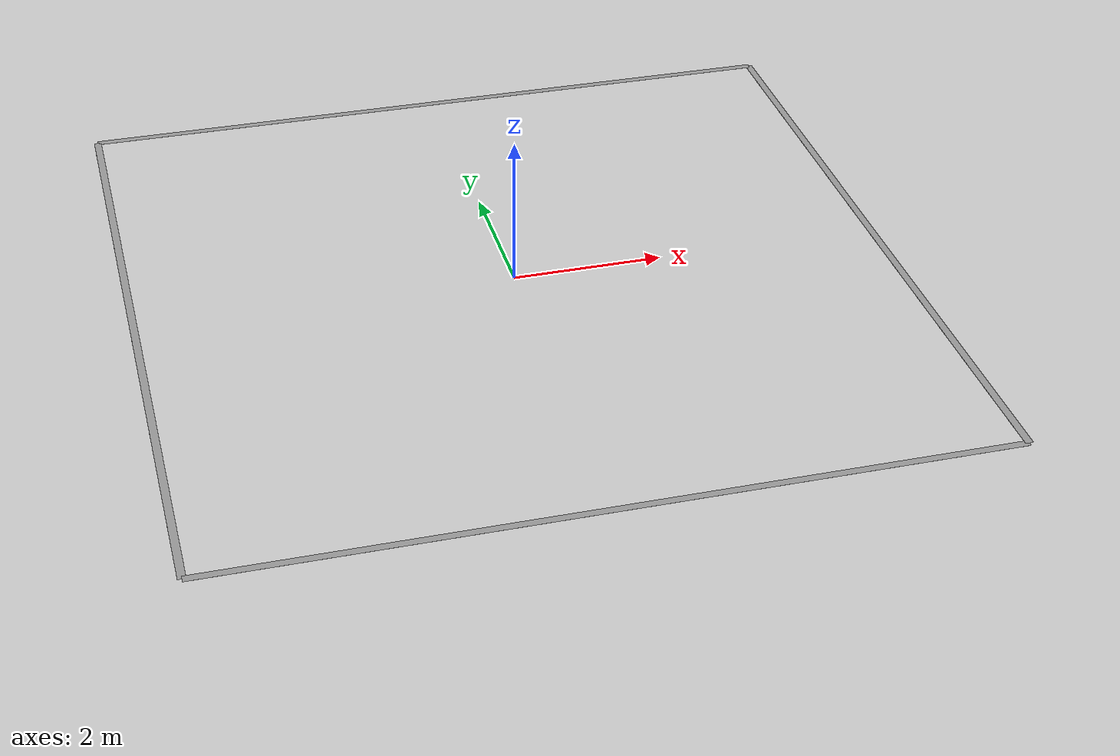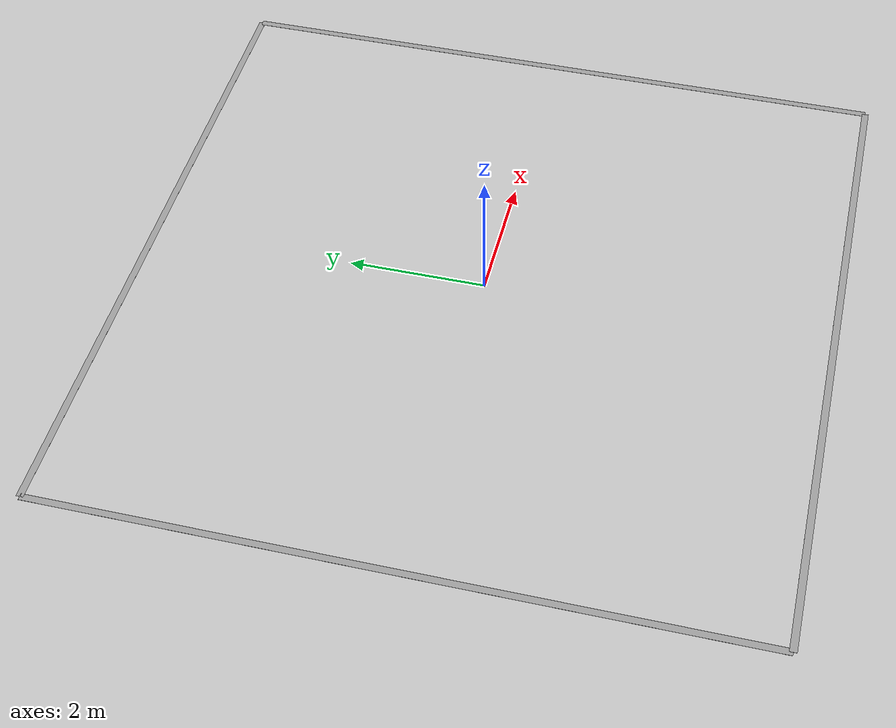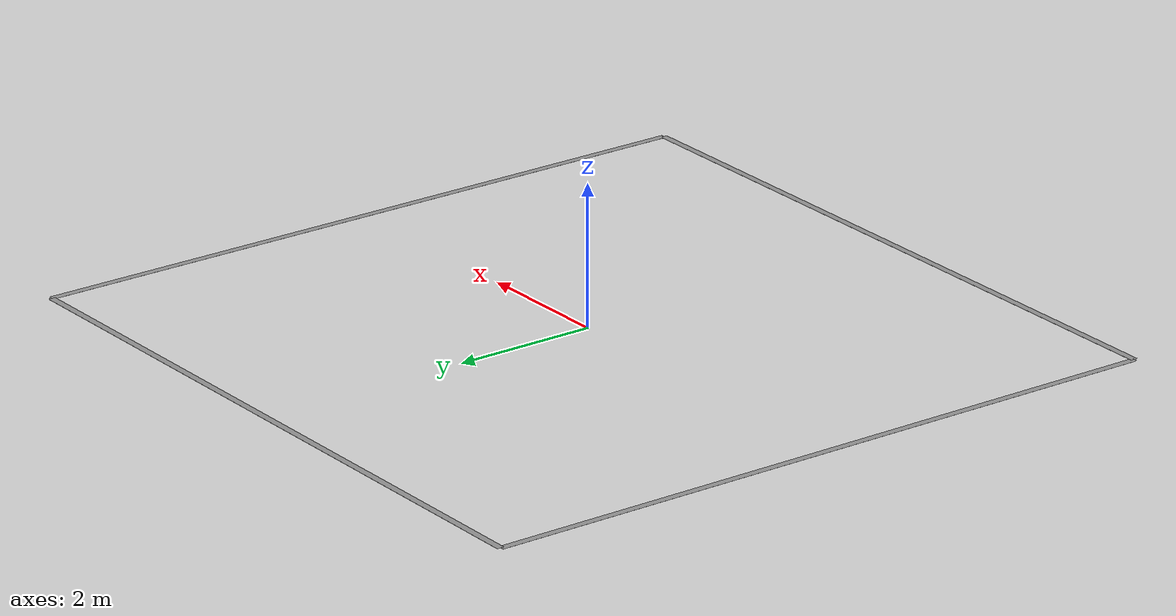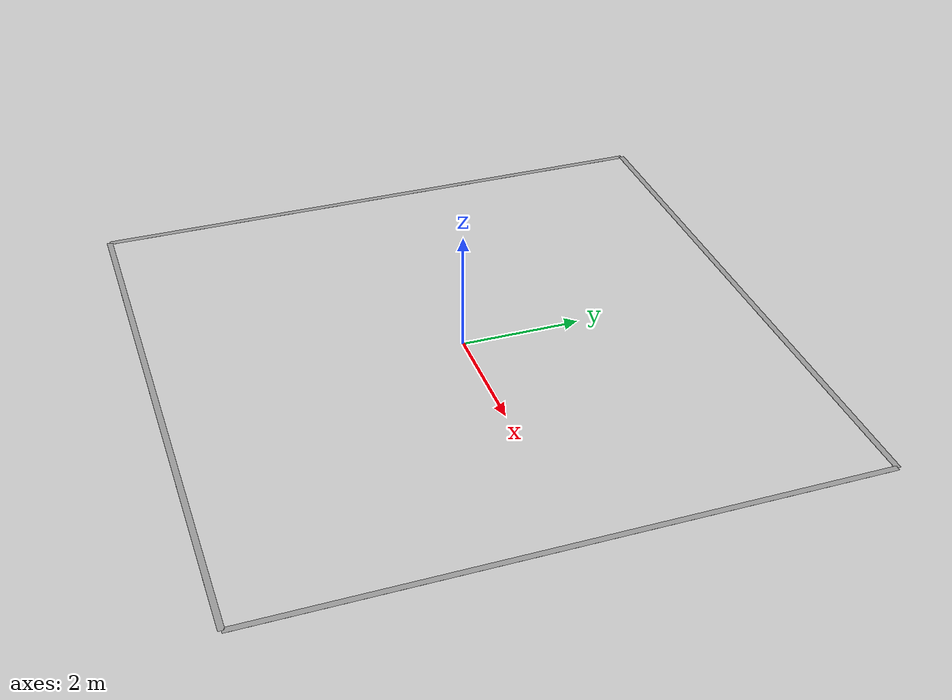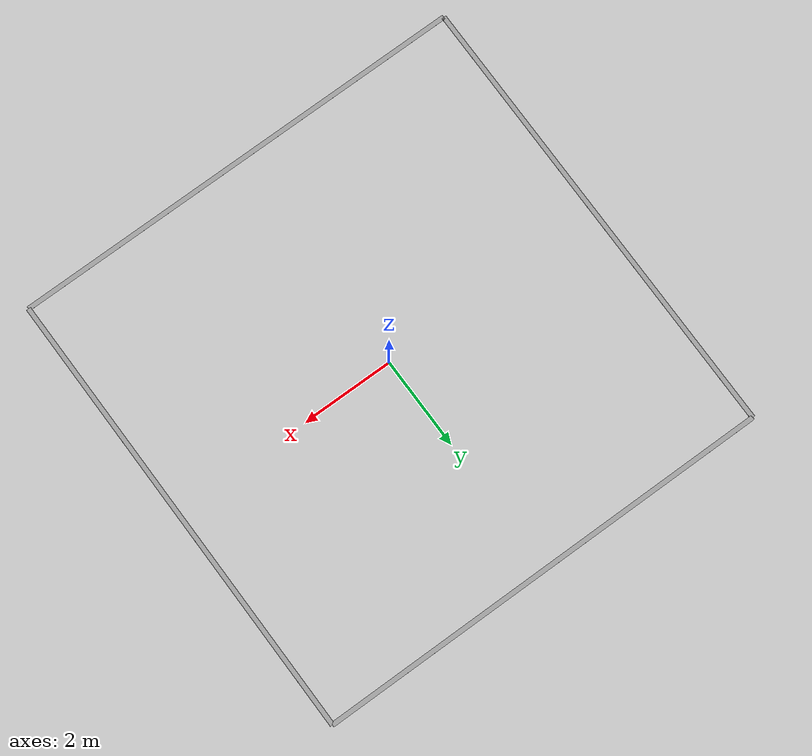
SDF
<?xml version='1.0'?>
<sdf version='1.6'>
  <model name='designation_area'>
    <link name='link_0'>
      <pose frame=''>0 -5 0 0 0 0</pose>
      <inertial>
        <mass>1</mass>
        <inertia>
          <ixx>0.166667</ixx>
          <ixy>0</ixy>
          <ixz>0</ixz>
          <iyy>0.166667</iyy>
          <iyz>0</iyz>
          <izz>0.166667</izz>
        </inertia>
        <pose frame=''>0 0 0 0 0 0</pose>
      </inertial>
      <gravity>1</gravity>
      <self_collide>0</self_collide>
      <kinematic>0</kinematic>
      <visual name='ModelPreview_0::link_0::visual_1'>
        <pose frame=''>0 0 0 0 0 0</pose>
        <geometry>
          <box>
            <size>10 0.1 0.001</size>
          </box>
        </geometry>
        <material>
          <lighting>1</lighting>
          <script>
            <uri>file://media/materials/scripts/gazebo.material</uri>
            <name>Gazebo/Grey</name>
          </script>
          <ambient>1 1 1 1</ambient>
          <diffuse>1 1 1 1</diffuse>
          <specular>0.01 0.01 0.01 1</specular>
          <emissive>0 0 0 1</emissive>
          <shader type='vertex'>
            <normal_map>__default__</normal_map>
          </shader>
        </material>
        <cast_shadows>1</cast_shadows>
        <transparency>0</transparency>
      </visual>
      <visual name='visual'>
        <pose frame=''>0 0 0 0 0 0</pose>
        <geometry>
          <box>
            <size>10 0.1 0.001</size>
          </box>
        </geometry>
        <material>
          <lighting>1</lighting>
          <script>
            <uri>file://media/materials/scripts/gazebo.material</uri>
            <name>Gazebo/Grey</name>
          </script>
          <ambient>1 1 1 1</ambient>
          <diffuse>1 1 1 1</diffuse>
          <specular>0.01 0.01 0.01 1</specular>
          <emissive>0 0 0 1</emissive>
          <shader type='vertex'>
            <normal_map>__default__</normal_map>
          </shader>
        </material>
        <cast_shadows>1</cast_shadows>
        <transparency>0</transparency>
      </visual>
      <collision name='collision'>
        <laser_retro>0</laser_retro>
        <max_contacts>10</max_contacts>
        <pose frame=''>0 0 0 0 0 0</pose>
        <geometry>
          <box>
            <size>10 0.1 0.001</size>
          </box>
        </geometry>
        <surface>
          <friction>
            <ode>
              <mu>1</mu>
              <mu2>1</mu2>
              <fdir1>0 0 0</fdir1>
              <slip1>0</slip1>
              <slip2>0</slip2>
            </ode>
            <torsional>
              <coefficient>1</coefficient>
              <patch_radius>0</patch_radius>
              <surface_radius>0</surface_radius>
              <use_patch_radius>1</use_patch_radius>
              <ode>
                <slip>0</slip>
              </ode>
            </torsional>
          </friction>
          <bounce>
            <restitution_coefficient>0</restitution_coefficient>
            <threshold>1e+06</threshold>
          </bounce>
          <contact>
            <collide_without_contact>0</collide_without_contact>
            <collide_without_contact_bitmask>1</collide_without_contact_bitmask>
            <collide_bitmask>1</collide_bitmask>
            <ode>
              <soft_cfm>0</soft_cfm>
              <soft_erp>0.2</soft_erp>
              <kp>1e+13</kp>
              <kd>1</kd>
              <max_vel>0.01</max_vel>
              <min_depth>0</min_depth>
            </ode>
            <bullet>
              <split_impulse>1</split_impulse>
              <split_impulse_penetration_threshold>-0.01</split_impulse_penetration_threshold>
              <soft_cfm>0</soft_cfm>
              <soft_erp>0.2</soft_erp>
              <kp>1e+13</kp>
              <kd>1</kd>
            </bullet>
          </contact>
        </surface>
      </collision>
    </link>
    <link name='link_0_clone'>
      <pose frame=''>0 5 0 0 0 0</pose>
      <inertial>
        <mass>1</mass>
        <inertia>
          <ixx>0.166667</ixx>
          <ixy>0</ixy>
          <ixz>0</ixz>
          <iyy>0.166667</iyy>
          <iyz>0</iyz>
          <izz>0.166667</izz>
        </inertia>
        <pose frame=''>0 0 0 0 0 0</pose>
      </inertial>
      <self_collide>0</self_collide>
      <kinematic>0</kinematic>
      <gravity>1</gravity>
      <visual name='visual_1'>
        <pose frame=''>0 0 0 0 0 0</pose>
        <geometry>
          <box>
            <size>10 0.1 0.001</size>
          </box>
        </geometry>
        <material>
          <lighting>1</lighting>
          <script>
            <uri>file://media/materials/scripts/gazebo.material</uri>
            <name>Gazebo/Grey</name>
          </script>
          <ambient>1 1 1 1</ambient>
          <diffuse>1 1 1 1</diffuse>
          <specular>0.01 0.01 0.01 1</specular>
          <emissive>0 0 0 1</emissive>
          <shader type='vertex'>
            <normal_map>__default__</normal_map>
          </shader>
        </material>
        <cast_shadows>1</cast_shadows>
        <transparency>0</transparency>
      </visual>
      <visual name='visual'>
        <pose frame=''>0 0 0 0 0 0</pose>
        <geometry>
          <box>
            <size>10 0.1 0.001</size>
          </box>
        </geometry>
        <material>
          <lighting>1</lighting>
          <script>
            <uri>file://media/materials/scripts/gazebo.material</uri>
            <name>Gazebo/Grey</name>
          </script>
          <ambient>1 1 1 1</ambient>
          <diffuse>1 1 1 1</diffuse>
          <specular>0.01 0.01 0.01 1</specular>
          <emissive>0 0 0 1</emissive>
          <shader type='vertex'>
            <normal_map>__default__</normal_map>
          </shader>
        </material>
        <cast_shadows>1</cast_shadows>
        <transparency>0</transparency>
      </visual>
      <collision name='collision'>
        <laser_retro>0</laser_retro>
        <max_contacts>10</max_contacts>
        <pose frame=''>0 0 0 0 0 0</pose>
        <geometry>
          <box>
            <size>10 0.1 0.001</size>
          </box>
        </geometry>
        <surface>
          <friction>
            <ode>
              <mu>1</mu>
              <mu2>1</mu2>
              <fdir1>0 0 0</fdir1>
              <slip1>0</slip1>
              <slip2>0</slip2>
            </ode>
            <torsional>
              <coefficient>1</coefficient>
              <patch_radius>0</patch_radius>
              <surface_radius>0</surface_radius>
              <use_patch_radius>1</use_patch_radius>
              <ode>
                <slip>0</slip>
              </ode>
            </torsional>
          </friction>
          <bounce>
            <restitution_coefficient>0</restitution_coefficient>
            <threshold>1e+06</threshold>
          </bounce>
          <contact>
            <collide_without_contact>0</collide_without_contact>
            <collide_without_contact_bitmask>1</collide_without_contact_bitmask>
            <collide_bitmask>1</collide_bitmask>
            <ode>
              <soft_cfm>0</soft_cfm>
              <soft_erp>0.2</soft_erp>
              <kp>1e+13</kp>
              <kd>1</kd>
              <max_vel>0.01</max_vel>
              <min_depth>0</min_depth>
            </ode>
            <bullet>
              <split_impulse>1</split_impulse>
              <split_impulse_penetration_threshold>-0.01</split_impulse_penetration_threshold>
              <soft_cfm>0</soft_cfm>
              <soft_erp>0.2</soft_erp>
              <kp>1e+13</kp>
              <kd>1</kd>
            </bullet>
          </contact>
        </surface>
      </collision>
    </link>
    <link name='link_0_clone_0'>
      <pose frame=''>5 0 0 0 0 1.5708</pose>
      <inertial>
        <mass>1</mass>
        <inertia>
          <ixx>0.166667</ixx>
          <ixy>0</ixy>
          <ixz>0</ixz>
          <iyy>0.166667</iyy>
          <iyz>0</iyz>
          <izz>0.166667</izz>
        </inertia>
        <pose frame=''>0 0 0 0 0 0</pose>
      </inertial>
      <self_collide>0</self_collide>
      <kinematic>0</kinematic>
      <gravity>1</gravity>
      <visual name='visual_1'>
        <pose frame=''>0 0 0 0 0 0</pose>
        <geometry>
          <box>
            <size>10 0.1 0.001</size>
          </box>
        </geometry>
        <material>
          <lighting>1</lighting>
          <script>
            <uri>file://media/materials/scripts/gazebo.material</uri>
            <name>Gazebo/Grey</name>
          </script>
          <ambient>1 1 1 1</ambient>
          <diffuse>1 1 1 1</diffuse>
          <specular>0.01 0.01 0.01 1</specular>
          <emissive>0 0 0 1</emissive>
          <shader type='vertex'>
            <normal_map>__default__</normal_map>
          </shader>
        </material>
        <cast_shadows>1</cast_shadows>
        <transparency>0</transparency>
      </visual>
      <visual name='visual'>
        <pose frame=''>0 0 0 0 0 0</pose>
        <geometry>
          <box>
            <size>10 0.1 0.001</size>
          </box>
        </geometry>
        <material>
          <lighting>1</lighting>
          <script>
            <uri>file://media/materials/scripts/gazebo.material</uri>
            <name>Gazebo/Grey</name>
          </script>
          <ambient>1 1 1 1</ambient>
          <diffuse>1 1 1 1</diffuse>
          <specular>0.01 0.01 0.01 1</specular>
          <emissive>0 0 0 1</emissive>
          <shader type='vertex'>
            <normal_map>__default__</normal_map>
          </shader>
        </material>
        <cast_shadows>1</cast_shadows>
        <transparency>0</transparency>
      </visual>
      <collision name='collision'>
        <laser_retro>0</laser_retro>
        <max_contacts>10</max_contacts>
        <pose frame=''>0 0 0 0 0 0</pose>
        <geometry>
          <box>
            <size>10 0.1 0.001</size>
          </box>
        </geometry>
        <surface>
          <friction>
            <ode>
              <mu>1</mu>
              <mu2>1</mu2>
              <fdir1>0 0 0</fdir1>
              <slip1>0</slip1>
              <slip2>0</slip2>
            </ode>
            <torsional>
              <coefficient>1</coefficient>
              <patch_radius>0</patch_radius>
              <surface_radius>0</surface_radius>
              <use_patch_radius>1</use_patch_radius>
              <ode>
                <slip>0</slip>
              </ode>
            </torsional>
          </friction>
          <bounce>
            <restitution_coefficient>0</restitution_coefficient>
            <threshold>1e+06</threshold>
          </bounce>
          <contact>
            <collide_without_contact>0</collide_without_contact>
            <collide_without_contact_bitmask>1</collide_without_contact_bitmask>
            <collide_bitmask>1</collide_bitmask>
            <ode>
              <soft_cfm>0</soft_cfm>
              <soft_erp>0.2</soft_erp>
              <kp>1e+13</kp>
              <kd>1</kd>
              <max_vel>0.01</max_vel>
              <min_depth>0</min_depth>
            </ode>
            <bullet>
              <split_impulse>1</split_impulse>
              <split_impulse_penetration_threshold>-0.01</split_impulse_penetration_threshold>
              <soft_cfm>0</soft_cfm>
              <soft_erp>0.2</soft_erp>
              <kp>1e+13</kp>
              <kd>1</kd>
            </bullet>
          </contact>
        </surface>
      </collision>
    </link>
    <link name='link_0_clone_0_clone'>
      <pose frame=''>-5 0 0 0 0 1.5708</pose>
      <inertial>
        <mass>1</mass>
        <inertia>
          <ixx>0.166667</ixx>
          <ixy>0</ixy>
          <ixz>0</ixz>
          <iyy>0.166667</iyy>
          <iyz>0</iyz>
          <izz>0.166667</izz>
        </inertia>
        <pose frame=''>0 0 0 0 0 0</pose>
      </inertial>
      <self_collide>0</self_collide>
      <kinematic>0</kinematic>
      <gravity>1</gravity>
      <visual name='visual_1'>
        <pose frame=''>0 0 0 0 0 0</pose>
        <geometry>
          <box>
            <size>10 0.1 0.001</size>
          </box>
        </geometry>
        <material>
          <lighting>1</lighting>
          <script>
            <uri>file://media/materials/scripts/gazebo.material</uri>
            <name>Gazebo/Grey</name>
          </script>
          <ambient>1 1 1 1</ambient>
          <diffuse>1 1 1 1</diffuse>
          <specular>0.01 0.01 0.01 1</specular>
          <emissive>0 0 0 1</emissive>
          <shader type='vertex'>
            <normal_map>__default__</normal_map>
          </shader>
        </material>
        <cast_shadows>1</cast_shadows>
        <transparency>0</transparency>
      </visual>
      <visual name='visual'>
        <pose frame=''>0 0 0 0 0 0</pose>
        <geometry>
          <box>
            <size>10 0.1 0.001</size>
          </box>
        </geometry>
        <material>
          <lighting>1</lighting>
          <script>
            <uri>file://media/materials/scripts/gazebo.material</uri>
            <name>Gazebo/Grey</name>
          </script>
          <ambient>1 1 1 1</ambient>
          <diffuse>1 1 1 1</diffuse>
          <specular>0.01 0.01 0.01 1</specular>
          <emissive>0 0 0 1</emissive>
          <shader type='vertex'>
            <normal_map>__default__</normal_map>
          </shader>
        </material>
        <cast_shadows>1</cast_shadows>
        <transparency>0</transparency>
      </visual>
      <collision name='collision'>
        <laser_retro>0</laser_retro>
        <max_contacts>10</max_contacts>
        <pose frame=''>0 0 0 0 0 0</pose>
        <geometry>
          <box>
            <size>10 0.1 0.001</size>
          </box>
        </geometry>
        <surface>
          <friction>
            <ode>
              <mu>1</mu>
              <mu2>1</mu2>
              <fdir1>0 0 0</fdir1>
              <slip1>0</slip1>
              <slip2>0</slip2>
            </ode>
            <torsional>
              <coefficient>1</coefficient>
              <patch_radius>0</patch_radius>
              <surface_radius>0</surface_radius>
              <use_patch_radius>1</use_patch_radius>
              <ode>
                <slip>0</slip>
              </ode>
            </torsional>
          </friction>
          <bounce>
            <restitution_coefficient>0</restitution_coefficient>
            <threshold>1e+06</threshold>
          </bounce>
          <contact>
            <collide_without_contact>0</collide_without_contact>
            <collide_without_contact_bitmask>1</collide_without_contact_bitmask>
            <collide_bitmask>1</collide_bitmask>
            <ode>
              <soft_cfm>0</soft_cfm>
              <soft_erp>0.2</soft_erp>
              <kp>1e+13</kp>
              <kd>1</kd>
              <max_vel>0.01</max_vel>
              <min_depth>0</min_depth>
            </ode>
            <bullet>
              <split_impulse>1</split_impulse>
              <split_impulse_penetration_threshold>-0.01</split_impulse_penetration_threshold>
              <soft_cfm>0</soft_cfm>
              <soft_erp>0.2</soft_erp>
              <kp>1e+13</kp>
              <kd>1</kd>
            </bullet>
          </contact>
        </surface>
      </collision>
    </link>
    <static>1</static>
    <allow_auto_disable>1</allow_auto_disable>
  </model>
</sdf>
